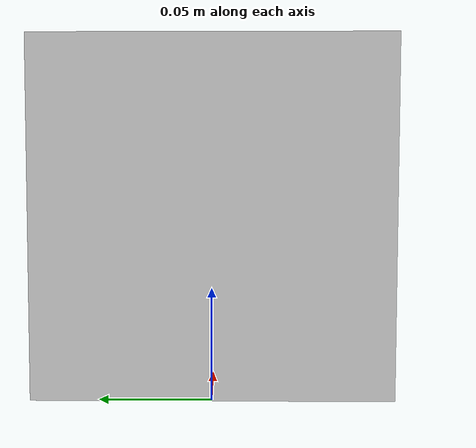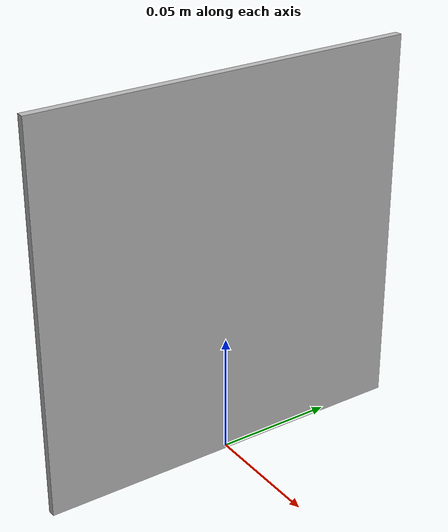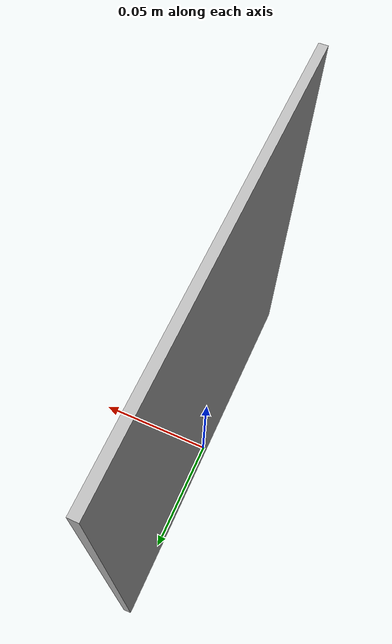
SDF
<?xml version="1.0" ?><sdf version="1.5">
  <model name="Marker19">
    <static>true</static>
    <link name="link">
      <visual name="visual">
        <geometry>
          <mesh>
            <uri>model://marker19/meshes/Marker19.dae</uri>
          <scale>0.3225806451612903 0.3225806451612903 0.3225806451612903</scale></mesh>
        </geometry>
      </visual>
    </link>
  </model>
</sdf>
